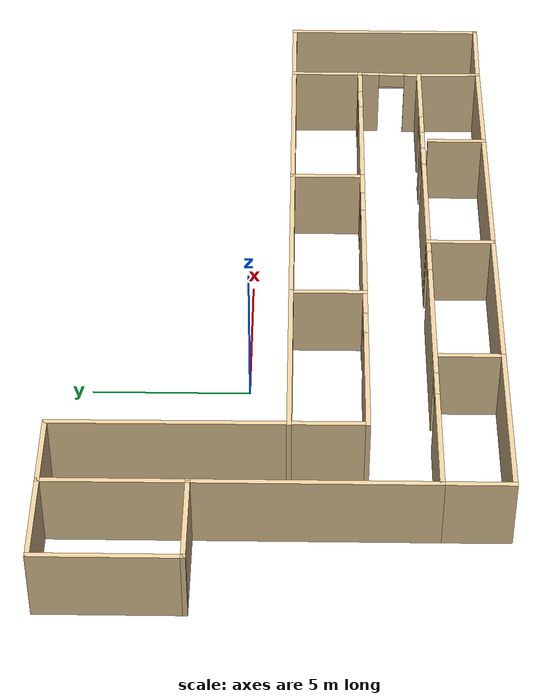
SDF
<?xml version='1.0'?>
<sdf version='1.7'>
  <model name='Untitled'>
    <pose>3.73089 -0.928682 0 0 -0 0</pose>
    <link name='Wall_10'>
      <collision name='Wall_10_Collision'>
        <geometry>
          <box>
            <size>4.5 0.15 2.5</size>
          </box>
        </geometry>
        <pose>0 0 1.25 0 -0 0</pose>
      </collision>
      <visual name='Wall_10_Visual'>
        <pose>0 0 1.25 0 -0 0</pose>
        <geometry>
          <box>
            <size>4.5 0.15 2.5</size>
          </box>
        </geometry>
        <material>
          <script>
            <uri>file://media/materials/scripts/gazebo.material</uri>
            <name>Gazebo/Grey</name>
          </script>
          <ambient>0.921569 0.807843 0.615686 1</ambient>
        </material>
        <meta>
          <layer>0</layer>
        </meta>
      </visual>
      <pose>-12.6833 4.7506 0 0 -0 1.5708</pose>
    </link>
    <link name='Wall_12'>
      <collision name='Wall_12_Collision'>
        <geometry>
          <box>
            <size>2.5 0.15 2.5</size>
          </box>
        </geometry>
        <pose>0 0 1.25 0 -0 0</pose>
      </collision>
      <visual name='Wall_12_Visual'>
        <pose>0 0 1.25 0 -0 0</pose>
        <geometry>
          <box>
            <size>2.5 0.15 2.5</size>
          </box>
        </geometry>
        <material>
          <script>
            <uri>file://media/materials/scripts/gazebo.material</uri>
            <name>Gazebo/Grey</name>
          </script>
          <ambient>0.921569 0.807843 0.615686 1</ambient>
        </material>
        <meta>
          <layer>0</layer>
        </meta>
      </visual>
      <pose>-8.65831 6.9256 0 0 -0 0</pose>
    </link>
    <link name='Wall_13'>
      <collision name='Wall_13_Collision'>
        <geometry>
          <box>
            <size>9.75 0.15 2.5</size>
          </box>
        </geometry>
        <pose>0 0 1.25 0 -0 0</pose>
      </collision>
      <visual name='Wall_13_Visual'>
        <pose>0 0 1.25 0 -0 0</pose>
        <geometry>
          <box>
            <size>9.75 0.15 2.5</size>
          </box>
        </geometry>
        <material>
          <script>
            <uri>file://media/materials/scripts/gazebo.material</uri>
            <name>Gazebo/Grey</name>
          </script>
          <ambient>0.921569 0.807843 0.615686 1</ambient>
        </material>
        <meta>
          <layer>0</layer>
        </meta>
      </visual>
      <pose>-7.46811 2.1256 0 0 -0 -1.56763</pose>
    </link>
    <link name='Wall_15'>
      <collision name='Wall_15_Collision'>
        <geometry>
          <box>
            <size>7.5 0.15 2.5</size>
          </box>
        </geometry>
        <pose>0 0 1.25 0 -0 0</pose>
      </collision>
      <visual name='Wall_15_Visual'>
        <pose>0 0 1.25 0 -0 0</pose>
        <geometry>
          <box>
            <size>7.5 0.15 2.5</size>
          </box>
        </geometry>
        <material>
          <script>
            <uri>file://media/materials/scripts/gazebo.material</uri>
            <name>Gazebo/Grey</name>
          </script>
          <ambient>0.921569 0.807843 0.615686 1</ambient>
        </material>
        <meta>
          <layer>0</layer>
        </meta>
      </visual>
      <pose>-9.83331 -1.0994 0 0 -0 -1.5708</pose>
    </link>
    <link name='Wall_17'>
      <pose>-4.54311 -2.6744 0 0 -0 0</pose>
      <visual name='Wall_17_Visual_0'>
        <pose>-0.985612 0 1.25 0 -0 0</pose>
        <geometry>
          <box>
            <size>4.02878 0.15 2.5</size>
          </box>
        </geometry>
        <material>
          <script>
            <uri>file://media/materials/scripts/gazebo.material</uri>
            <name>Gazebo/Grey</name>
          </script>
          <ambient>0.921569 0.807843 0.615686 1</ambient>
        </material>
        <meta>
          <layer>0</layer>
        </meta>
      </visual>
      <collision name='Wall_17_Collision_0'>
        <geometry>
          <box>
            <size>4.02878 0.15 2.5</size>
          </box>
        </geometry>
        <pose>-0.985612 0 1.25 0 -0 0</pose>
      </collision>
      <visual name='Wall_17_Visual_1'>
        <pose>2.46439 0 1.25 0 -0 0</pose>
        <geometry>
          <box>
            <size>1.07122 0.15 2.5</size>
          </box>
        </geometry>
        <material>
          <script>
            <uri>file://media/materials/scripts/gazebo.material</uri>
            <name>Gazebo/Grey</name>
          </script>
          <ambient>0.921569 0.807843 0.615686 1</ambient>
        </material>
        <meta>
          <layer>0</layer>
        </meta>
      </visual>
      <collision name='Wall_17_Collision_1'>
        <geometry>
          <box>
            <size>1.07122 0.15 2.5</size>
          </box>
        </geometry>
        <pose>2.46439 0 1.25 0 -0 0</pose>
      </collision>
      <visual name='Wall_17_Visual_2'>
        <pose>1.47878 0 2.25 0 -0 0</pose>
        <geometry>
          <box>
            <size>0.9 0.15 0.5</size>
          </box>
        </geometry>
        <material>
          <script>
            <uri>file://media/materials/scripts/gazebo.material</uri>
            <name>Gazebo/Grey</name>
          </script>
          <ambient>0.921569 0.807843 0.615686 1</ambient>
        </material>
        <meta>
          <layer>0</layer>
        </meta>
      </visual>
      <collision name='Wall_17_Collision_2'>
        <geometry>
          <box>
            <size>0.9 0.15 0.5</size>
          </box>
        </geometry>
        <pose>1.47878 0 2.25 0 -0 0</pose>
      </collision>
    </link>
    <link name='Wall_21'>
      <pose>1.30689 -2.6744 0 0 -0 0</pose>
      <visual name='Wall_21_Visual_0'>
        <pose>-0.928064 0 1.25 0 -0 0</pose>
        <geometry>
          <box>
            <size>4.14387 0.15 2.5</size>
          </box>
        </geometry>
        <material>
          <script>
            <uri>file://media/materials/scripts/gazebo.material</uri>
            <name>Gazebo/Grey</name>
          </script>
          <ambient>0.921569 0.807843 0.615686 1</ambient>
        </material>
        <meta>
          <layer>0</layer>
        </meta>
      </visual>
      <collision name='Wall_21_Collision_0'>
        <geometry>
          <box>
            <size>4.14387 0.15 2.5</size>
          </box>
        </geometry>
        <pose>-0.928064 0 1.25 0 -0 0</pose>
      </collision>
      <visual name='Wall_21_Visual_1'>
        <pose>2.52194 0 1.25 0 -0 0</pose>
        <geometry>
          <box>
            <size>0.956129 0.15 2.5</size>
          </box>
        </geometry>
        <material>
          <script>
            <uri>file://media/materials/scripts/gazebo.material</uri>
            <name>Gazebo/Grey</name>
          </script>
          <ambient>0.921569 0.807843 0.615686 1</ambient>
        </material>
        <meta>
          <layer>0</layer>
        </meta>
      </visual>
      <collision name='Wall_21_Collision_1'>
        <geometry>
          <box>
            <size>0.956129 0.15 2.5</size>
          </box>
        </geometry>
        <pose>2.52194 0 1.25 0 -0 0</pose>
      </collision>
      <visual name='Wall_21_Visual_2'>
        <pose>1.59387 0 2.25 0 -0 0</pose>
        <geometry>
          <box>
            <size>0.9 0.15 0.5</size>
          </box>
        </geometry>
        <material>
          <script>
            <uri>file://media/materials/scripts/gazebo.material</uri>
            <name>Gazebo/Grey</name>
          </script>
          <ambient>0.921569 0.807843 0.615686 1</ambient>
        </material>
        <meta>
          <layer>0</layer>
        </meta>
      </visual>
      <collision name='Wall_21_Collision_2'>
        <geometry>
          <box>
            <size>0.9 0.15 0.5</size>
          </box>
        </geometry>
        <pose>1.59387 0 2.25 0 -0 0</pose>
      </collision>
    </link>
    <link name='Wall_22'>
      <collision name='Wall_22_Collision'>
        <geometry>
          <box>
            <size>0.15 0.15 2.5</size>
          </box>
        </geometry>
        <pose>0 0 1.25 0 -0 0</pose>
      </collision>
      <visual name='Wall_22_Visual'>
        <pose>0 0 1.25 0 -0 0</pose>
        <geometry>
          <box>
            <size>0.15 0.15 2.5</size>
          </box>
        </geometry>
        <material>
          <script>
            <uri>file://media/materials/scripts/gazebo.material</uri>
            <name>Gazebo/Grey</name>
          </script>
          <ambient>1 1 1 1</ambient>
        </material>
        <meta>
          <layer>0</layer>
        </meta>
      </visual>
      <pose>4.23189 -2.6744 0 0 -0 0</pose>
    </link>
    <link name='Wall_25'>
      <collision name='Wall_25_Collision'>
        <geometry>
          <box>
            <size>2.5 0.15 2.5</size>
          </box>
        </geometry>
        <pose>0 0 1.25 0 -0 0</pose>
      </collision>
      <visual name='Wall_25_Visual'>
        <pose>0 0 1.25 0 -0 0</pose>
        <geometry>
          <box>
            <size>2.5 0.15 2.5</size>
          </box>
        </geometry>
        <material>
          <script>
            <uri>file://media/materials/scripts/gazebo.material</uri>
            <name>Gazebo/Grey</name>
          </script>
          <ambient>0.921569 0.807843 0.615686 1</ambient>
        </material>
        <meta>
          <layer>0</layer>
        </meta>
      </visual>
      <pose>-1.61811 -1.4994 0 0 -0 1.5708</pose>
    </link>
    <link name='Wall_27'>
      <pose>7.15689 -2.6744 0 0 -0 0</pose>
      <visual name='Wall_27_Visual_0'>
        <pose>-1.02347 0 1.25 0 -0 0</pose>
        <geometry>
          <box>
            <size>3.95306 0.15 2.5</size>
          </box>
        </geometry>
        <material>
          <script>
            <uri>file://media/materials/scripts/gazebo.material</uri>
            <name>Gazebo/Grey</name>
          </script>
          <ambient>0.921569 0.807843 0.615686 1</ambient>
        </material>
        <meta>
          <layer>0</layer>
        </meta>
      </visual>
      <collision name='Wall_27_Collision_0'>
        <geometry>
          <box>
            <size>3.95306 0.15 2.5</size>
          </box>
        </geometry>
        <pose>-1.02347 0 1.25 0 -0 0</pose>
      </collision>
      <visual name='Wall_27_Visual_1'>
        <pose>2.42653 0 1.25 0 -0 0</pose>
        <geometry>
          <box>
            <size>1.14694 0.15 2.5</size>
          </box>
        </geometry>
        <material>
          <script>
            <uri>file://media/materials/scripts/gazebo.material</uri>
            <name>Gazebo/Grey</name>
          </script>
          <ambient>0.921569 0.807843 0.615686 1</ambient>
        </material>
        <meta>
          <layer>0</layer>
        </meta>
      </visual>
      <collision name='Wall_27_Collision_1'>
        <geometry>
          <box>
            <size>1.14694 0.15 2.5</size>
          </box>
        </geometry>
        <pose>2.42653 0 1.25 0 -0 0</pose>
      </collision>
      <visual name='Wall_27_Visual_2'>
        <pose>1.40306 0 2.25 0 -0 0</pose>
        <geometry>
          <box>
            <size>0.9 0.15 0.5</size>
          </box>
        </geometry>
        <material>
          <script>
            <uri>file://media/materials/scripts/gazebo.material</uri>
            <name>Gazebo/Grey</name>
          </script>
          <ambient>0.921569 0.807843 0.615686 1</ambient>
        </material>
        <meta>
          <layer>0</layer>
        </meta>
      </visual>
      <collision name='Wall_27_Collision_2'>
        <geometry>
          <box>
            <size>0.9 0.15 0.5</size>
          </box>
        </geometry>
        <pose>1.40306 0 2.25 0 -0 0</pose>
      </collision>
    </link>
    <link name='Wall_28'>
      <collision name='Wall_28_Collision'>
        <geometry>
          <box>
            <size>2.5 0.15 2.5</size>
          </box>
        </geometry>
        <pose>0 0 1.25 0 -0 0</pose>
      </collision>
      <visual name='Wall_28_Visual'>
        <pose>0 0 1.25 0 -0 0</pose>
        <geometry>
          <box>
            <size>2.5 0.15 2.5</size>
          </box>
        </geometry>
        <material>
          <script>
            <uri>file://media/materials/scripts/gazebo.material</uri>
            <name>Gazebo/Grey</name>
          </script>
          <ambient>0.921569 0.807843 0.615686 1</ambient>
        </material>
        <meta>
          <layer>0</layer>
        </meta>
      </visual>
      <pose>10.0819 -1.4994 0 0 -0 1.5708</pose>
    </link>
    <link name='Wall_30'>
      <collision name='Wall_30_Collision'>
        <geometry>
          <box>
            <size>6 0.15 2.5</size>
          </box>
        </geometry>
        <pose>0 0 1.25 0 -0 0</pose>
      </collision>
      <visual name='Wall_30_Visual'>
        <pose>0 0 1.25 0 -0 0</pose>
        <geometry>
          <box>
            <size>6 0.15 2.5</size>
          </box>
        </geometry>
        <material>
          <script>
            <uri>file://media/materials/scripts/gazebo.material</uri>
            <name>Gazebo/Grey</name>
          </script>
          <ambient>0.921569 0.807843 0.615686 1</ambient>
        </material>
        <meta>
          <layer>0</layer>
        </meta>
      </visual>
      <pose>1.30689 -0.324397 0 0 -0 0</pose>
    </link>
    <link name='Wall_31'>
      <collision name='Wall_31_Collision'>
        <geometry>
          <box>
            <size>2.5 0.15 2.5</size>
          </box>
        </geometry>
        <pose>0 0 1.25 0 -0 0</pose>
      </collision>
      <visual name='Wall_31_Visual'>
        <pose>0 0 1.25 0 -0 0</pose>
        <geometry>
          <box>
            <size>2.5 0.15 2.5</size>
          </box>
        </geometry>
        <material>
          <script>
            <uri>file://media/materials/scripts/gazebo.material</uri>
            <name>Gazebo/Grey</name>
          </script>
          <ambient>0.921569 0.807843 0.615686 1</ambient>
        </material>
        <meta>
          <layer>0</layer>
        </meta>
      </visual>
      <pose>4.23189 -1.4994 0 0 -0 -1.5708</pose>
    </link>
    <link name='Wall_33'>
      <collision name='Wall_33_Collision'>
        <geometry>
          <box>
            <size>6 0.15 2.5</size>
          </box>
        </geometry>
        <pose>0 0 1.25 0 -0 0</pose>
      </collision>
      <visual name='Wall_33_Visual'>
        <pose>0 0 1.25 0 -0 0</pose>
        <geometry>
          <box>
            <size>6 0.15 2.5</size>
          </box>
        </geometry>
        <material>
          <script>
            <uri>file://media/materials/scripts/gazebo.material</uri>
            <name>Gazebo/Grey</name>
          </script>
          <ambient>0.921569 0.807843 0.615686 1</ambient>
        </material>
        <meta>
          <layer>0</layer>
        </meta>
      </visual>
      <pose>-4.54311 -0.324397 0 0 -0 3.14159</pose>
    </link>
    <link name='Wall_35'>
      <collision name='Wall_35_Collision'>
        <geometry>
          <box>
            <size>6 0.15 2.5</size>
          </box>
        </geometry>
        <pose>0 0 1.25 0 -0 0</pose>
      </collision>
      <visual name='Wall_35_Visual'>
        <pose>0 0 1.25 0 -0 0</pose>
        <geometry>
          <box>
            <size>6 0.15 2.5</size>
          </box>
        </geometry>
        <material>
          <script>
            <uri>file://media/materials/scripts/gazebo.material</uri>
            <name>Gazebo/Grey</name>
          </script>
          <ambient>0.921569 0.807843 0.615686 1</ambient>
        </material>
        <meta>
          <layer>0</layer>
        </meta>
      </visual>
      <pose>7.15689 -0.324397 0 0 -0 0</pose>
    </link>
    <link name='Wall_37'>
      <pose>0.091685 -4.7744 0 0 -0 0</pose>
      <visual name='Wall_37_Visual_0'>
        <pose>-8.13368 0 1.25 0 -0 0</pose>
        <geometry>
          <box>
            <size>3.73264 0.15 2.5</size>
          </box>
        </geometry>
        <material>
          <script>
            <uri>file://media/materials/scripts/gazebo.material</uri>
            <name>Gazebo/Grey</name>
          </script>
          <ambient>0.921569 0.807843 0.615686 1</ambient>
        </material>
        <meta>
          <layer>0</layer>
        </meta>
      </visual>
      <collision name='Wall_37_Collision_0'>
        <geometry>
          <box>
            <size>3.73264 0.15 2.5</size>
          </box>
        </geometry>
        <pose>-8.13368 0 1.25 0 -0 0</pose>
      </collision>
      <visual name='Wall_37_Visual_1'>
        <pose>-2.98777 0 1.25 0 -0 0</pose>
        <geometry>
          <box>
            <size>4.75919 0.15 2.5</size>
          </box>
        </geometry>
        <material>
          <script>
            <uri>file://media/materials/scripts/gazebo.material</uri>
            <name>Gazebo/Grey</name>
          </script>
          <ambient>0.921569 0.807843 0.615686 1</ambient>
        </material>
        <meta>
          <layer>0</layer>
        </meta>
      </visual>
      <collision name='Wall_37_Collision_1'>
        <geometry>
          <box>
            <size>4.75919 0.15 2.5</size>
          </box>
        </geometry>
        <pose>-2.98777 0 1.25 0 -0 0</pose>
      </collision>
      <visual name='Wall_37_Visual_2'>
        <pose>2.54906 0 1.25 0 -0 0</pose>
        <geometry>
          <box>
            <size>4.51447 0.15 2.5</size>
          </box>
        </geometry>
        <material>
          <script>
            <uri>file://media/materials/scripts/gazebo.material</uri>
            <name>Gazebo/Grey</name>
          </script>
          <ambient>0.921569 0.807843 0.615686 1</ambient>
        </material>
        <meta>
          <layer>0</layer>
        </meta>
      </visual>
      <collision name='Wall_37_Collision_2'>
        <geometry>
          <box>
            <size>4.51447 0.15 2.5</size>
          </box>
        </geometry>
        <pose>2.54906 0 1.25 0 -0 0</pose>
      </collision>
      <visual name='Wall_37_Visual_3'>
        <pose>6.14342 0 1.25 0 -0 0</pose>
        <geometry>
          <box>
            <size>0.874233 0.15 2.5</size>
          </box>
        </geometry>
        <material>
          <script>
            <uri>file://media/materials/scripts/gazebo.material</uri>
            <name>Gazebo/Grey</name>
          </script>
          <ambient>0.921569 0.807843 0.615686 1</ambient>
        </material>
        <meta>
          <layer>0</layer>
        </meta>
      </visual>
      <collision name='Wall_37_Collision_3'>
        <geometry>
          <box>
            <size>0.874233 0.15 2.5</size>
          </box>
        </geometry>
        <pose>6.14342 0 1.25 0 -0 0</pose>
      </collision>
      <visual name='Wall_37_Visual_4'>
        <pose>8.74027 0 1.25 0 -0 0</pose>
        <geometry>
          <box>
            <size>2.51947 0.15 2.5</size>
          </box>
        </geometry>
        <material>
          <script>
            <uri>file://media/materials/scripts/gazebo.material</uri>
            <name>Gazebo/Grey</name>
          </script>
          <ambient>0.921569 0.807843 0.615686 1</ambient>
        </material>
        <meta>
          <layer>0</layer>
        </meta>
      </visual>
      <collision name='Wall_37_Collision_4'>
        <geometry>
          <box>
            <size>2.51947 0.15 2.5</size>
          </box>
        </geometry>
        <pose>8.74027 0 1.25 0 -0 0</pose>
      </collision>
      <visual name='Wall_37_Visual_5'>
        <pose>-5.81736 0 2.25 0 -0 0</pose>
        <geometry>
          <box>
            <size>0.9 0.15 0.5</size>
          </box>
        </geometry>
        <material>
          <script>
            <uri>file://media/materials/scripts/gazebo.material</uri>
            <name>Gazebo/Grey</name>
          </script>
          <ambient>0.921569 0.807843 0.615686 1</ambient>
        </material>
        <meta>
          <layer>0</layer>
        </meta>
      </visual>
      <collision name='Wall_37_Collision_5'>
        <geometry>
          <box>
            <size>0.9 0.15 0.5</size>
          </box>
        </geometry>
        <pose>-5.81736 0 2.25 0 -0 0</pose>
      </collision>
      <visual name='Wall_37_Visual_6'>
        <pose>-0.158172 0 2.25 0 -0 0</pose>
        <geometry>
          <box>
            <size>0.9 0.15 0.5</size>
          </box>
        </geometry>
        <material>
          <script>
            <uri>file://media/materials/scripts/gazebo.material</uri>
            <name>Gazebo/Grey</name>
          </script>
          <ambient>0.921569 0.807843 0.615686 1</ambient>
        </material>
        <meta>
          <layer>0</layer>
        </meta>
      </visual>
      <collision name='Wall_37_Collision_6'>
        <geometry>
          <box>
            <size>0.9 0.15 0.5</size>
          </box>
        </geometry>
        <pose>-0.158172 0 2.25 0 -0 0</pose>
      </collision>
      <visual name='Wall_37_Visual_7'>
        <pose>5.2563 0 2.25 0 -0 0</pose>
        <geometry>
          <box>
            <size>0.9 0.15 0.5</size>
          </box>
        </geometry>
        <material>
          <script>
            <uri>file://media/materials/scripts/gazebo.material</uri>
            <name>Gazebo/Grey</name>
          </script>
          <ambient>0.921569 0.807843 0.615686 1</ambient>
        </material>
        <meta>
          <layer>0</layer>
        </meta>
      </visual>
      <collision name='Wall_37_Collision_7'>
        <geometry>
          <box>
            <size>0.9 0.15 0.5</size>
          </box>
        </geometry>
        <pose>5.2563 0 2.25 0 -0 0</pose>
      </collision>
      <visual name='Wall_37_Visual_8'>
        <pose>7.03053 0 2.25 0 -0 0</pose>
        <geometry>
          <box>
            <size>0.9 0.15 0.5</size>
          </box>
        </geometry>
        <material>
          <script>
            <uri>file://media/materials/scripts/gazebo.material</uri>
            <name>Gazebo/Grey</name>
          </script>
          <ambient>0.921569 0.807843 0.615686 1</ambient>
        </material>
        <meta>
          <layer>0</layer>
        </meta>
      </visual>
      <collision name='Wall_37_Collision_8'>
        <geometry>
          <box>
            <size>0.9 0.15 0.5</size>
          </box>
        </geometry>
        <pose>7.03053 0 2.25 0 -0 0</pose>
      </collision>
    </link>
    <link name='Wall_38'>
      <pose>10.0493 -3.7244 0 0 -0 1.53975</pose>
      <visual name='Wall_38_Visual_0'>
        <pose>-0.831414 0 1.25 0 -0 0</pose>
        <geometry>
          <box>
            <size>0.588184 0.15 2.5</size>
          </box>
        </geometry>
        <material>
          <script>
            <uri>file://media/materials/scripts/gazebo.material</uri>
            <name>Gazebo/Grey</name>
          </script>
          <ambient>0.921569 0.807843 0.615686 1</ambient>
        </material>
        <meta>
          <layer>0</layer>
        </meta>
      </visual>
      <collision name='Wall_38_Collision_0'>
        <geometry>
          <box>
            <size>0.588184 0.15 2.5</size>
          </box>
        </geometry>
        <pose>-0.831414 0 1.25 0 -0 0</pose>
      </collision>
      <visual name='Wall_38_Visual_1'>
        <pose>0.744092 0 1.25 0 -0 0</pose>
        <geometry>
          <box>
            <size>0.762828 0.15 2.5</size>
          </box>
        </geometry>
        <material>
          <script>
            <uri>file://media/materials/scripts/gazebo.material</uri>
            <name>Gazebo/Grey</name>
          </script>
          <ambient>0.921569 0.807843 0.615686 1</ambient>
        </material>
        <meta>
          <layer>0</layer>
        </meta>
      </visual>
      <collision name='Wall_38_Collision_1'>
        <geometry>
          <box>
            <size>0.762828 0.15 2.5</size>
          </box>
        </geometry>
        <pose>0.744092 0 1.25 0 -0 0</pose>
      </collision>
      <visual name='Wall_38_Visual_2'>
        <pose>-0.087322 0 2.25 0 -0 0</pose>
        <geometry>
          <box>
            <size>0.9 0.15 0.5</size>
          </box>
        </geometry>
        <material>
          <script>
            <uri>file://media/materials/scripts/gazebo.material</uri>
            <name>Gazebo/Grey</name>
          </script>
          <ambient>0.921569 0.807843 0.615686 1</ambient>
        </material>
        <meta>
          <layer>0</layer>
        </meta>
      </visual>
      <collision name='Wall_38_Collision_2'>
        <geometry>
          <box>
            <size>0.9 0.15 0.5</size>
          </box>
        </geometry>
        <pose>-0.087322 0 2.25 0 -0 0</pose>
      </collision>
    </link>
    <link name='Wall_40'>
      <collision name='Wall_40_Collision'>
        <geometry>
          <box>
            <size>2.25 0.15 2.5</size>
          </box>
        </geometry>
        <pose>0 0 1.25 0 -0 0</pose>
      </collision>
      <visual name='Wall_40_Visual'>
        <pose>0 0 1.25 0 -0 0</pose>
        <geometry>
          <box>
            <size>2.25 0.15 2.5</size>
          </box>
        </geometry>
        <material>
          <script>
            <uri>file://media/materials/scripts/gazebo.material</uri>
            <name>Gazebo/Grey</name>
          </script>
          <ambient>0.921569 0.807843 0.615686 1</ambient>
        </material>
        <meta>
          <layer>0</layer>
        </meta>
      </visual>
      <pose>-9.83331 -5.8244 0 0 -0 -1.5708</pose>
    </link>
    <link name='Wall_42'>
      <collision name='Wall_42_Collision'>
        <geometry>
          <box>
            <size>5.5 0.15 2.5</size>
          </box>
        </geometry>
        <pose>0 0 1.25 0 -0 0</pose>
      </collision>
      <visual name='Wall_42_Visual'>
        <pose>0 0 1.25 0 -0 0</pose>
        <geometry>
          <box>
            <size>5.5 0.15 2.5</size>
          </box>
        </geometry>
        <material>
          <script>
            <uri>file://media/materials/scripts/gazebo.material</uri>
            <name>Gazebo/Grey</name>
          </script>
          <ambient>0.921569 0.807843 0.615686 1</ambient>
        </material>
        <meta>
          <layer>0</layer>
        </meta>
      </visual>
      <pose>-7.15831 -6.8744 0 0 -0 0</pose>
    </link>
    <link name='Wall_43'>
      <collision name='Wall_43_Collision'>
        <geometry>
          <box>
            <size>2.25 0.15 2.5</size>
          </box>
        </geometry>
        <pose>0 0 1.25 0 -0 0</pose>
      </collision>
      <visual name='Wall_43_Visual'>
        <pose>0 0 1.25 0 -0 0</pose>
        <geometry>
          <box>
            <size>2.25 0.15 2.5</size>
          </box>
        </geometry>
        <material>
          <script>
            <uri>file://media/materials/scripts/gazebo.material</uri>
            <name>Gazebo/Grey</name>
          </script>
          <ambient>0.921569 0.807843 0.615686 1</ambient>
        </material>
        <meta>
          <layer>0</layer>
        </meta>
      </visual>
      <pose>-4.48332 -5.8244 0 0 -0 1.5708</pose>
    </link>
    <link name='Wall_45'>
      <collision name='Wall_45_Collision'>
        <geometry>
          <box>
            <size>5.5 0.15 2.5</size>
          </box>
        </geometry>
        <pose>0 0 1.25 0 -0 0</pose>
      </collision>
      <visual name='Wall_45_Visual'>
        <pose>0 0 1.25 0 -0 0</pose>
        <geometry>
          <box>
            <size>5.5 0.15 2.5</size>
          </box>
        </geometry>
        <material>
          <script>
            <uri>file://media/materials/scripts/gazebo.material</uri>
            <name>Gazebo/Grey</name>
          </script>
          <ambient>0.921569 0.807843 0.615686 1</ambient>
        </material>
        <meta>
          <layer>0</layer>
        </meta>
      </visual>
      <pose>-1.80831 -6.8744 0 0 -0 0</pose>
    </link>
    <link name='Wall_46'>
      <collision name='Wall_46_Collision'>
        <geometry>
          <box>
            <size>2.25 0.15 2.5</size>
          </box>
        </geometry>
        <pose>0 0 1.25 0 -0 0</pose>
      </collision>
      <visual name='Wall_46_Visual'>
        <pose>0 0 1.25 0 -0 0</pose>
        <geometry>
          <box>
            <size>2.25 0.15 2.5</size>
          </box>
        </geometry>
        <material>
          <script>
            <uri>file://media/materials/scripts/gazebo.material</uri>
            <name>Gazebo/Grey</name>
          </script>
          <ambient>0.921569 0.807843 0.615686 1</ambient>
        </material>
        <meta>
          <layer>0</layer>
        </meta>
      </visual>
      <pose>0.866685 -5.8244 0 0 -0 1.5708</pose>
    </link>
    <link name='Wall_48'>
      <collision name='Wall_48_Collision'>
        <geometry>
          <box>
            <size>5.5 0.15 2.5</size>
          </box>
        </geometry>
        <pose>0 0 1.25 0 -0 0</pose>
      </collision>
      <visual name='Wall_48_Visual'>
        <pose>0 0 1.25 0 -0 0</pose>
        <geometry>
          <box>
            <size>5.5 0.15 2.5</size>
          </box>
        </geometry>
        <material>
          <script>
            <uri>file://media/materials/scripts/gazebo.material</uri>
            <name>Gazebo/Grey</name>
          </script>
          <ambient>0.921569 0.807843 0.615686 1</ambient>
        </material>
        <meta>
          <layer>0</layer>
        </meta>
      </visual>
      <pose>3.54169 -6.8744 0 0 -0 0</pose>
    </link>
    <link name='Wall_49'>
      <collision name='Wall_49_Collision'>
        <geometry>
          <box>
            <size>2 0.15 2.5</size>
          </box>
        </geometry>
        <pose>0 0 1.25 0 -0 0</pose>
      </collision>
      <visual name='Wall_49_Visual'>
        <pose>0 0 1.25 0 -0 0</pose>
        <geometry>
          <box>
            <size>2 0.15 2.5</size>
          </box>
        </geometry>
        <material>
          <script>
            <uri>file://media/materials/scripts/gazebo.material</uri>
            <name>Gazebo/Grey</name>
          </script>
          <ambient>0.921569 0.807843 0.615686 1</ambient>
        </material>
        <meta>
          <layer>0</layer>
        </meta>
      </visual>
      <pose>6.21669 -5.9494 0 0 -0 1.5708</pose>
    </link>
    <link name='Wall_51'>
      <collision name='Wall_51_Collision'>
        <geometry>
          <box>
            <size>4 0.15 2.5</size>
          </box>
        </geometry>
        <pose>0 0 1.25 0 -0 0</pose>
      </collision>
      <visual name='Wall_51_Visual'>
        <pose>0 0 1.25 0 -0 0</pose>
        <geometry>
          <box>
            <size>4 0.15 2.5</size>
          </box>
        </geometry>
        <material>
          <script>
            <uri>file://media/materials/scripts/gazebo.material</uri>
            <name>Gazebo/Grey</name>
          </script>
          <ambient>0.921569 0.807843 0.615686 1</ambient>
        </material>
        <meta>
          <layer>0</layer>
        </meta>
      </visual>
      <pose>8.14169 -6.8744 0 0 -0 0</pose>
    </link>
    <link name='Wall_52'>
      <collision name='Wall_52_Collision'>
        <geometry>
          <box>
            <size>2.2506 0.15 2.5</size>
          </box>
        </geometry>
        <pose>0 0 1.25 0 -0 0</pose>
      </collision>
      <visual name='Wall_52_Visual'>
        <pose>0 0 1.25 0 -0 0</pose>
        <geometry>
          <box>
            <size>2.2506 0.15 2.5</size>
          </box>
        </geometry>
        <material>
          <script>
            <uri>file://media/materials/scripts/gazebo.material</uri>
            <name>Gazebo/Grey</name>
          </script>
          <ambient>0.921569 0.807843 0.615686 1</ambient>
        </material>
        <meta>
          <layer>0</layer>
        </meta>
      </visual>
      <pose>10.0417 -5.8244 0 0 -0 1.5946</pose>
    </link>
    <link name='Wall_54'>
      <collision name='Wall_54_Collision'>
        <geometry>
          <box>
            <size>2.75 0.15 2.5</size>
          </box>
        </geometry>
        <pose>0 0 1.25 0 -0 0</pose>
      </collision>
      <visual name='Wall_54_Visual'>
        <pose>0 0 1.25 0 -0 0</pose>
        <geometry>
          <box>
            <size>2.75 0.15 2.5</size>
          </box>
        </geometry>
        <material>
          <script>
            <uri>file://media/materials/scripts/gazebo.material</uri>
            <name>Gazebo/Grey</name>
          </script>
          <ambient>0.921569 0.807843 0.615686 1</ambient>
        </material>
        <meta>
          <layer>0</layer>
        </meta>
      </visual>
      <pose>11.3819 -0.324397 0 0 -0 0</pose>
    </link>
    <link name='Wall_55'>
      <collision name='Wall_55_Collision'>
        <geometry>
          <box>
            <size>6.75 0.15 2.5</size>
          </box>
        </geometry>
        <pose>0 0 1.25 0 -0 0</pose>
      </collision>
      <visual name='Wall_55_Visual'>
        <pose>0 0 1.25 0 -0 0</pose>
        <geometry>
          <box>
            <size>6.75 0.15 2.5</size>
          </box>
        </geometry>
        <material>
          <script>
            <uri>file://media/materials/scripts/gazebo.material</uri>
            <name>Gazebo/Grey</name>
          </script>
          <ambient>0.921569 0.807843 0.615686 1</ambient>
        </material>
        <meta>
          <layer>0</layer>
        </meta>
      </visual>
      <pose>12.6819 -3.6244 0 0 -0 -1.5708</pose>
    </link>
    <link name='Wall_56'>
      <collision name='Wall_56_Collision'>
        <geometry>
          <box>
            <size>2.76569 0.15 2.5</size>
          </box>
        </geometry>
        <pose>0 0 1.25 0 -0 0</pose>
      </collision>
      <visual name='Wall_56_Visual'>
        <pose>0 0 1.25 0 -0 0</pose>
        <geometry>
          <box>
            <size>2.76569 0.15 2.5</size>
          </box>
        </geometry>
        <material>
          <script>
            <uri>file://media/materials/scripts/gazebo.material</uri>
            <name>Gazebo/Grey</name>
          </script>
          <ambient>0.921569 0.807843 0.615686 1</ambient>
        </material>
        <meta>
          <layer>0</layer>
        </meta>
      </visual>
      <pose>11.3743 -6.8994 0 0 -0 3.12248</pose>
    </link>
    <link name='Wall_7'>
      <collision name='Wall_7_Collision'>
        <geometry>
          <box>
            <size>3 0.15 2.5</size>
          </box>
        </geometry>
        <pose>0 0 1.25 0 -0 0</pose>
      </collision>
      <visual name='Wall_7_Visual'>
        <pose>0 0 1.25 0 -0 0</pose>
        <geometry>
          <box>
            <size>3 0.15 2.5</size>
          </box>
        </geometry>
        <material>
          <script>
            <uri>file://media/materials/scripts/gazebo.material</uri>
            <name>Gazebo/Grey</name>
          </script>
          <ambient>0.921569 0.807843 0.615686 1</ambient>
        </material>
        <meta>
          <layer>0</layer>
        </meta>
      </visual>
      <pose>-11.2583 6.9256 0 0 -0 0</pose>
    </link>
    <link name='Wall_8'>
      <collision name='Wall_8_Collision'>
        <geometry>
          <box>
            <size>4.5 0.15 2.5</size>
          </box>
        </geometry>
        <pose>0 0 1.25 0 -0 0</pose>
      </collision>
      <visual name='Wall_8_Visual'>
        <pose>0 0 1.25 0 -0 0</pose>
        <geometry>
          <box>
            <size>4.5 0.15 2.5</size>
          </box>
        </geometry>
        <material>
          <script>
            <uri>file://media/materials/scripts/gazebo.material</uri>
            <name>Gazebo/Grey</name>
          </script>
          <ambient>0.921569 0.807843 0.615686 1</ambient>
        </material>
        <meta>
          <layer>0</layer>
        </meta>
      </visual>
      <pose>-9.83331 4.7506 0 0 -0 -1.5708</pose>
    </link>
    <link name='Wall_9'>
      <collision name='Wall_9_Collision'>
        <geometry>
          <box>
            <size>3 0.15 2.5</size>
          </box>
        </geometry>
        <pose>0 0 1.25 0 -0 0</pose>
      </collision>
      <visual name='Wall_9_Visual'>
        <pose>0 0 1.25 0 -0 0</pose>
        <geometry>
          <box>
            <size>3 0.15 2.5</size>
          </box>
        </geometry>
        <material>
          <script>
            <uri>file://media/materials/scripts/gazebo.material</uri>
            <name>Gazebo/Grey</name>
          </script>
          <ambient>0.921569 0.807843 0.615686 1</ambient>
        </material>
        <meta>
          <layer>0</layer>
        </meta>
      </visual>
      <pose>-11.2583 2.5756 0 0 -0 3.14159</pose>
    </link>
    <static>1</static>
  </model>
</sdf>
